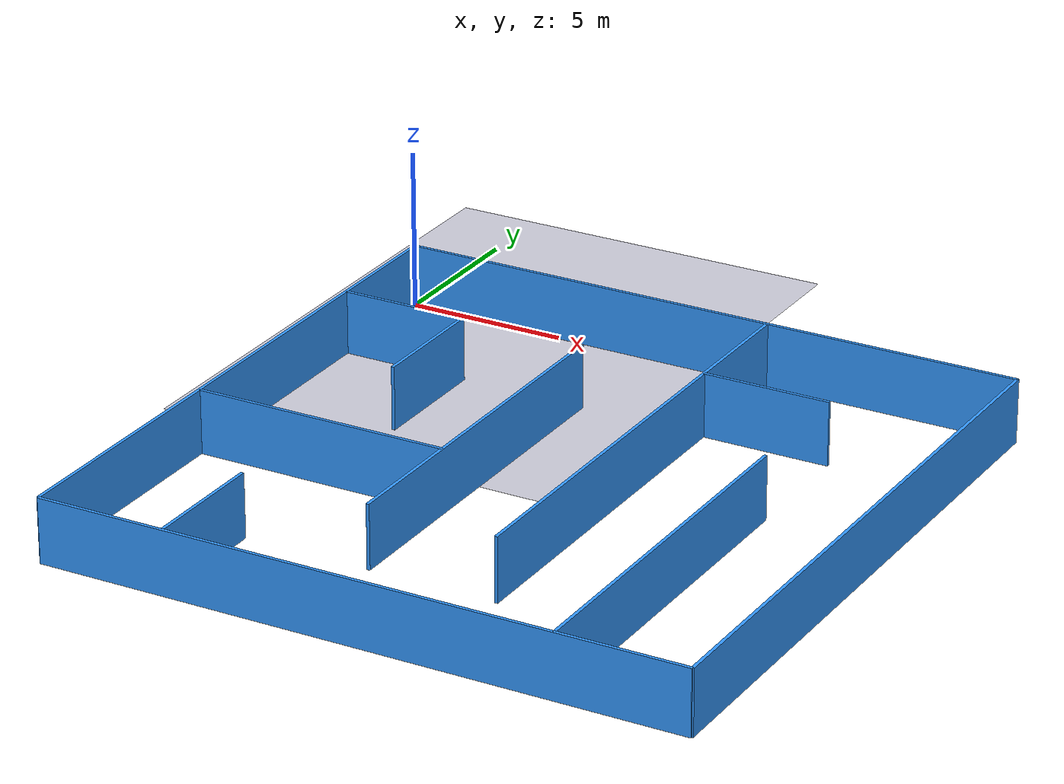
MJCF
<mujoco model="plane">
   <compiler angle="degree" inertiafromgeom="true" meshdir="meshes/" />
   <size nconmax="100" njmax="500" nstack="-1" />

   <option timestep="0.002">
		<flag warmstart="enable" />
	</option>

	<visual>
		<quality shadowsize="4096" />
	</visual>

   <default>
		<geom material="MatBlue" type="box" />
   </default>
   <asset>
		<texture builtin="gradient" height="100" rgb1="1 1 1" rgb2="0 0 0" type="skybox" width="100" />
		<texture builtin="checker" height="500" mark="edge" markrgb=".1 .1 .1" name="groundplane" rgb1=".7 .7 .75" rgb2=".9 .9 .95" type="2d" width="500" />

		<material name="MatPlastic" reflectance="0.5" rgba=".4 .41 .4 1" shininess=".6" specular=".8" />
		<material name="MatBlue" reflectance="0.5" rgba=".2 .6 1 1" shininess=".6" specular=".8" />
		<material name="MatFrame" reflectance="0.5" rgba=".21 .2 .2 1" shininess=".1" specular="1.2" />
		<material name="MatGnd" reflectance="0.1" shininess=".01" specular=".5" texrepeat="5 5" texture="groundplane" />
   </asset>

    <worldbody>
		<light cutoff="60" diffuse=".5 .5 .5" dir="-0.5 -0.1 -0.8" directional="false" exponent="1" pos="0.5 0.1 0.8" specular=".1 .1 .1" />
		<geom material="MatGnd" name="ground" pos="0 0 0" size="10 10 10" type="plane" />
    <geom pos="10.0 0 1.0" rgba="0.2 0.6 1 1" size="10.0 0.05 1.0" type="box" /><geom pos="10.0 -20.0 1.0" rgba="0.2 0.6 1 1" size="10.0 0.05 1.0" type="box" /><geom pos="0 -10.0 1.0" rgba="0.2 0.6 1 1" size="0.05 10.0 1.0" type="box" /><geom pos="20.0 -10.0 1.0" rgba="0.2 0.6 1 1" size="0.05 10.0 1.0" type="box" /><geom pos="2.0 -4.0 1.0" rgba="0.2 0.6 1 1" size="2.0 0.05 1.0" type="box" /><geom pos="4.0 -6.0 1.0" rgba="0.2 0.6 1 1" size="0.05 2.0 1.0" type="box" /><geom pos="4.0 -12.0 1.0" rgba="0.2 0.6 1 1" size="4.0 0.05 1.0" type="box" /><geom pos="4.0 -18.0 1.0" rgba="0.2 0.6 1 1" size="0.05 2.0 1.0" type="box" /><geom pos="8.0 -10.0 1.0" rgba="0.2 0.6 1 1" size="0.05 6.0 1.0" type="box" /><geom pos="12.0 -8.0 1.0" rgba="0.2 0.6 1 1" size="0.05 8.0 1.0" type="box" /><geom pos="14.0 -4.0 1.0" rgba="0.2 0.6 1 1" size="2.0 0.05 1.0" type="box" /><geom pos="16.0 -14.0 1.0" rgba="0.2 0.6 1 1" size="0.05 6.0 1.0" type="box" /></worldbody>

</mujoco>
